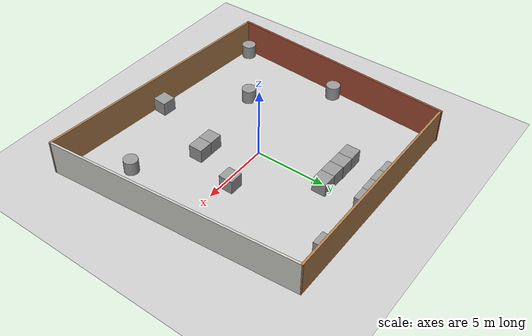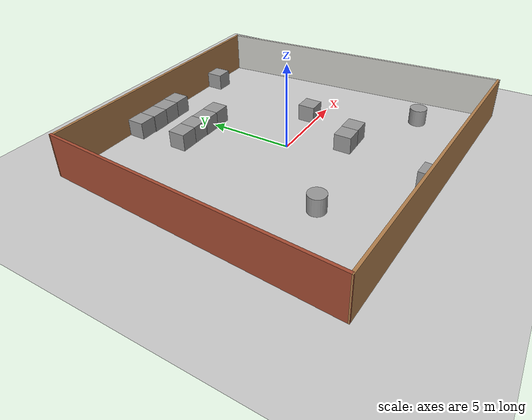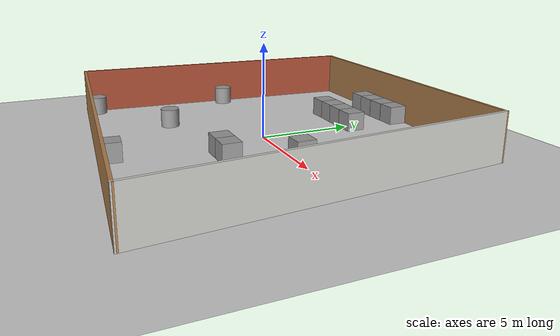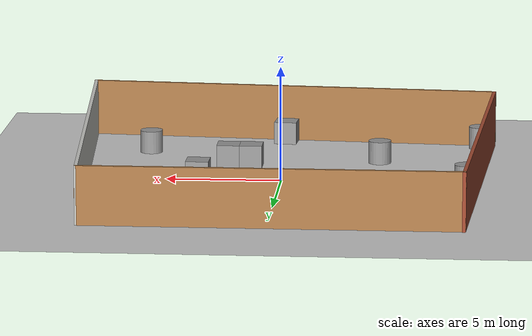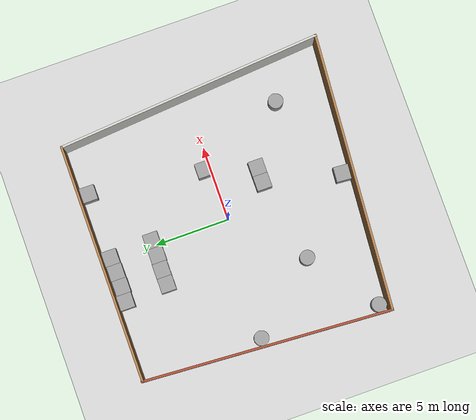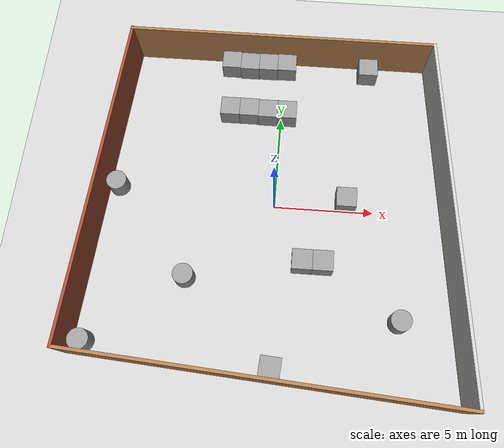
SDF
<sdf version="1.7">
 <world name="default">
  <scene><ambient>0.4 0.4 0.4 1</ambient><background>0.7 0.7 0.7 1</background><shadows>1</shadows></scene>
  <light name="sun" type="directional">
   <pose>0 0 10 0 -0 0</pose>
   <diffuse>0.8 0.8 0.8 1</diffuse>
   <specular>0.2 0.2 0.2 1</specular>
   <attenuation>
    <range>1000</range>
    <constant>0.9</constant>
    <linear>0.01</linear>
    <quadratic>0.001</quadratic>
   </attenuation>
   <direction>-0.5 0.1 -0.9</direction>
   <spot><inner_angle>0</inner_angle><outer_angle>0</outer_angle><falloff>0</falloff></spot>
  </light>
  <model name="ground_plane">
   <static>1</static>
   <link name="link">
    <collision name="collision">
     <geometry><plane><normal>0 0 1</normal><size>100 100</size></plane></geometry>
     <surface><friction><ode><mu>100</mu><mu2>50</mu2></ode></friction></surface>
    </collision>
    <visual name="visual">
     <cast_shadows>0</cast_shadows>
     <geometry><plane><normal>0 0 1</normal><size>100 100</size></plane></geometry>
     <material>
      <script><uri>file://media/materials/scripts/gazebo.material</uri><name>Gazebo/Grey</name></script>
     </material>
    </visual>
   </link>
  </model>
  <physics type="ode">
   <real_time_update_rate>1000</real_time_update_rate>
   <max_step_size>0.001</max_step_size>
   <real_time_factor>1</real_time_factor>
   <ode>
    <solver>
     <type>quick</type>
     <iters>150</iters>
     <precon_iters>0</precon_iters>
     <sor>1.4</sor>
     <use_dynamic_moi_rescaling>1</use_dynamic_moi_rescaling>
    </solver>
    <constraints>
     <cfm>1e-05</cfm>
     <erp>0.2</erp>
     <contact_max_correcting_vel>2000</contact_max_correcting_vel>
     <contact_surface_layer>0.01</contact_surface_layer>
    </constraints>
   </ode>
  </physics>
  <gravity>0 0 -9.8</gravity>
  <magnetic_field>6e-06 2.3e-05 -4.2e-05</magnetic_field>
  <atmosphere type="adiabatic"/>
  <spherical_coordinates>
   <surface_model>EARTH_WGS84</surface_model>
   <latitude_deg>0</latitude_deg>
   <longitude_deg>0</longitude_deg>
   <elevation>0</elevation>
   <heading_deg>0</heading_deg>
  </spherical_coordinates>
  <model name="Untitled">
   <pose>0.051177 -0.276921 0 0 -0 0</pose>
   <link name="Wall_0">
    <collision name="Wall_0_Collision">
     <geometry><box><size>16.6677 0.15 2.5</size></box></geometry>
     <pose>0 0 1.25 0 -0 0</pose>
    </collision>
    <visual name="Wall_0_Visual">
     <pose>0 0 1.25 0 -0 0</pose>
     <geometry><box><size>16.6677 0.15 2.5</size></box></geometry>
     <material>
      <script><uri>file://media/materials/scripts/gazebo.material</uri><name>Gazebo/Bricks</name></script>
      <ambient>1 1 1 1</ambient>
     </material>
     <meta><layer>0</layer></meta>
    </visual>
    <pose>-8.64459 0.689502 0 0 -0 -1.63163</pose>
   </link>
   <link name="Wall_2">
    <collision name="Wall_2_Collision">
     <geometry><box><size>16 0.15 2.5</size></box></geometry>
     <pose>0 0 1.25 0 -0 0</pose>
    </collision>
    <visual name="Wall_2_Visual">
     <pose>0 0 1.25 0 -0 0</pose>
     <geometry><box><size>16 0.15 2.5</size></box></geometry>
     <material>
      <script><uri>file://media/materials/scripts/gazebo.material</uri><name>Gazebo/Wood</name></script>
      <ambient>1 1 1 1</ambient>
     </material>
     <meta><layer>0</layer></meta>
    </visual>
    <pose>-0.217493 8.90247 0 0 -0 0</pose>
   </link>
   <link name="Wall_3">
    <collision name="Wall_3_Collision">
     <geometry><box><size>18.0421 0.15 2.5</size></box></geometry>
     <pose>0 0 1.25 0 -0 0</pose>
    </collision>
    <visual name="Wall_3_Visual">
     <pose>0 0 1.25 0 -0 0</pose>
     <geometry><box><size>18.0421 0.15 2.5</size></box></geometry>
     <material>
      <script><uri>file://media/materials/scripts/gazebo.material</uri><name>Gazebo/CeilingTiled</name></script>
      <ambient>1 1 1 1</ambient>
     </material>
     <meta><layer>0</layer></meta>
    </visual>
    <pose>8.42692 -0.014612 0 0 -0 -1.49029</pose>
   </link>
   <link name="Wall_4">
    <collision name="Wall_4_Collision">
     <geometry><box><size>18.4948 0.15 2.5</size></box></geometry>
     <pose>0 0 1.25 0 -0 0</pose>
    </collision>
    <visual name="Wall_4_Visual">
     <pose>0 0 1.25 0 -0 0</pose>
     <geometry><box><size>18.4948 0.15 2.5</size></box></geometry>
     <material>
      <script><uri>file://media/materials/scripts/gazebo.material</uri><name>Gazebo/Wood</name></script>
      <ambient>1 1 1 1</ambient>
     </material>
     <meta><layer>0</layer></meta>
    </visual>
    <pose>-0.000182 -8.24287 0 0 -0 3.06643</pose>
   </link>
   <static>1</static>
  </model>
  <model name="unit_box_0">
   <pose>-0.864351 8.02434 0.5 -0 -0 -0.001548</pose>
   <link name="link">
    <inertial>
     <mass>1</mass>
     <inertia>
      <ixx>0.166667</ixx>
      <ixy>0</ixy>
      <ixz>0</ixz>
      <iyy>0.166667</iyy>
      <iyz>0</iyz>
      <izz>0.166667</izz>
     </inertia>
    </inertial>
    <collision name="collision"><geometry><box><size>1 1 1</size></box></geometry></collision>
    <visual name="visual">
     <geometry><box><size>1 1 1</size></box></geometry>
     <material>
      <script><name>Gazebo/Grey</name><uri>file://media/materials/scripts/gazebo.material</uri></script>
     </material>
    </visual>
   </link>
  </model>
  <model name="unit_box">
   <pose>0.135703 8.04968 0.5 0 0 -0.001571</pose>
   <link name="link">
    <inertial>
     <mass>1</mass>
     <inertia>
      <ixx>0.166667</ixx>
      <ixy>0</ixy>
      <ixz>0</ixz>
      <iyy>0.166667</iyy>
      <iyz>0</iyz>
      <izz>0.166667</izz>
     </inertia>
    </inertial>
    <collision name="collision"><geometry><box><size>1 1 1</size></box></geometry></collision>
    <visual name="visual">
     <geometry><box><size>1 1 1</size></box></geometry>
     <material>
      <script><name>Gazebo/Grey</name><uri>file://media/materials/scripts/gazebo.material</uri></script>
     </material>
    </visual>
   </link>
  </model>
  <model name="unit_box_1">
   <pose>4.54449 8.05055 0.5 0 -0 0</pose>
   <link name="link">
    <inertial>
     <mass>1</mass>
     <inertia>
      <ixx>0.166667</ixx>
      <ixy>0</ixy>
      <ixz>0</ixz>
      <iyy>0.166667</iyy>
      <iyz>0</iyz>
      <izz>0.166667</izz>
     </inertia>
    </inertial>
    <collision name="collision"><geometry><box><size>1 1 1</size></box></geometry></collision>
    <visual name="visual">
     <geometry><box><size>1 1 1</size></box></geometry>
     <material>
      <script><name>Gazebo/Grey</name><uri>file://media/materials/scripts/gazebo.material</uri></script>
     </material>
    </visual>
   </link>
  </model>
  <model name="unit_box_2">
   <pose>0.330432 -7.96279 0.5 0 -0 -0.075269</pose>
   <link name="link">
    <inertial>
     <mass>1</mass>
     <inertia>
      <ixx>0.166667</ixx>
      <ixy>0</ixy>
      <ixz>0</ixz>
      <iyy>0.166667</iyy>
      <iyz>0</iyz>
      <izz>0.166667</izz>
     </inertia>
    </inertial>
    <collision name="collision"><geometry><box><size>1 1 1</size></box></geometry></collision>
    <visual name="visual">
     <geometry><box><size>1 1 1</size></box></geometry>
     <material>
      <script><name>Gazebo/Grey</name><uri>file://media/materials/scripts/gazebo.material</uri></script>
     </material>
    </visual>
   </link>
  </model>
  <model name="unit_cylinder">
   <pose>-8.00743 0.57536 0.499993 4e-06 4e-06 -0</pose>
   <link name="link">
    <inertial>
     <mass>1</mass>
     <inertia><ixx>0.145833</ixx><ixy>0</ixy><ixz>0</ixz><iyy>0.145833</iyy><iyz>0</iyz><izz>0.125</izz></inertia>
    </inertial>
    <collision name="collision">
     <geometry><cylinder><radius>0.5</radius><length>1</length></cylinder></geometry>
    </collision>
    <visual name="visual">
     <geometry><cylinder><radius>0.5</radius><length>1</length></cylinder></geometry>
     <material>
      <script><name>Gazebo/Grey</name><uri>file://media/materials/scripts/gazebo.material</uri></script>
     </material>
    </visual>
   </link>
  </model>
  <model name="unit_cylinder_0">
   <pose>-8.48712 -7.30019 0.499995 0 -8e-06 -0.030659</pose>
   <link name="link">
    <inertial>
     <mass>1</mass>
     <inertia><ixx>0.145833</ixx><ixy>0</ixy><ixz>0</ixz><iyy>0.145833</iyy><iyz>0</iyz><izz>0.125</izz></inertia>
    </inertial>
    <collision name="collision">
     <geometry><cylinder><radius>0.5</radius><length>1</length></cylinder></geometry>
    </collision>
    <visual name="visual">
     <geometry><cylinder><radius>0.5</radius><length>1</length></cylinder></geometry>
     <material>
      <script><name>Gazebo/Grey</name><uri>file://media/materials/scripts/gazebo.material</uri></script>
     </material>
    </visual>
   </link>
  </model>
  <model name="unit_cylinder_1">
   <pose>-4.09553 -3.95965 0.499993 4e-06 4e-06 -0</pose>
   <link name="link">
    <inertial>
     <mass>1</mass>
     <inertia><ixx>0.145833</ixx><ixy>0</ixy><ixz>0</ixz><iyy>0.145833</iyy><iyz>0</iyz><izz>0.125</izz></inertia>
    </inertial>
    <collision name="collision">
     <geometry><cylinder><radius>0.5</radius><length>1</length></cylinder></geometry>
    </collision>
    <visual name="visual">
     <geometry><cylinder><radius>0.5</radius><length>1</length></cylinder></geometry>
     <material>
      <script><name>Gazebo/Grey</name><uri>file://media/materials/scripts/gazebo.material</uri></script>
     </material>
    </visual>
   </link>
  </model>
  <model name="unit_box_3">
   <pose>1.52534 -2.87393 0.5 0 0 -0.001059</pose>
   <link name="link">
    <inertial>
     <mass>1</mass>
     <inertia>
      <ixx>0.166667</ixx>
      <ixy>0</ixy>
      <ixz>0</ixz>
      <iyy>0.166667</iyy>
      <iyz>0</iyz>
      <izz>0.166667</izz>
     </inertia>
    </inertial>
    <collision name="collision"><geometry><box><size>1 1 1</size></box></geometry></collision>
    <visual name="visual">
     <geometry><box><size>1 1 1</size></box></geometry>
     <material>
      <script><name>Gazebo/Grey</name><uri>file://media/materials/scripts/gazebo.material</uri></script>
     </material>
    </visual>
   </link>
  </model>
  <model name="unit_box_4">
   <pose>2.52534 -2.8724 0.5 -0 -0 -0.001064</pose>
   <link name="link">
    <inertial>
     <mass>1</mass>
     <inertia>
      <ixx>0.166667</ixx>
      <ixy>0</ixy>
      <ixz>0</ixz>
      <iyy>0.166667</iyy>
      <iyz>0</iyz>
      <izz>0.166667</izz>
     </inertia>
    </inertial>
    <collision name="collision"><geometry><box><size>1 1 1</size></box></geometry></collision>
    <visual name="visual">
     <geometry><box><size>1 1 1</size></box></geometry>
     <material>
      <script><name>Gazebo/Grey</name><uri>file://media/materials/scripts/gazebo.material</uri></script>
     </material>
    </visual>
   </link>
  </model>
  <model name="unit_box_5">
   <pose>3.56601 0.452425 0.5 0 -0 0</pose>
   <link name="link">
    <inertial>
     <mass>1</mass>
     <inertia>
      <ixx>0.166667</ixx>
      <ixy>0</ixy>
      <ixz>0</ixz>
      <iyy>0.166667</iyy>
      <iyz>0</iyz>
      <izz>0.166667</izz>
     </inertia>
    </inertial>
    <collision name="collision"><geometry><box><size>1 1 1</size></box></geometry></collision>
    <visual name="visual">
     <geometry><box><size>1 1 1</size></box></geometry>
     <material>
      <script><name>Gazebo/Grey</name><uri>file://media/materials/scripts/gazebo.material</uri></script>
     </material>
    </visual>
   </link>
  </model>
  <model name="unit_cylinder_2">
   <pose>6.24347 -5.46609 0.499997 -4e-06 -4e-06 -0</pose>
   <link name="link">
    <inertial>
     <mass>1</mass>
     <inertia><ixx>0.145833</ixx><ixy>0</ixy><ixz>0</ixz><iyy>0.145833</iyy><iyz>0</iyz><izz>0.125</izz></inertia>
    </inertial>
    <collision name="collision">
     <geometry><cylinder><radius>0.5</radius><length>1</length></cylinder></geometry>
    </collision>
    <visual name="visual">
     <geometry><cylinder><radius>0.5</radius><length>1</length></cylinder></geometry>
     <material>
      <script><name>Gazebo/Grey</name><uri>file://media/materials/scripts/gazebo.material</uri></script>
     </material>
    </visual>
   </link>
  </model>
  <model name="unit_box_6">
   <pose>0.309493 5.16531 0.5 0 0 -0.000232</pose>
   <link name="link">
    <inertial>
     <mass>1</mass>
     <inertia>
      <ixx>0.166667</ixx>
      <ixy>0</ixy>
      <ixz>0</ixz>
      <iyy>0.166667</iyy>
      <iyz>0</iyz>
      <izz>0.166667</izz>
     </inertia>
    </inertial>
    <collision name="collision"><geometry><box><size>1 1 1</size></box></geometry></collision>
    <visual name="visual">
     <geometry><box><size>1 1 1</size></box></geometry>
     <material>
      <script><name>Gazebo/Grey</name><uri>file://media/materials/scripts/gazebo.material</uri></script>
     </material>
    </visual>
   </link>
  </model>
  <model name="unit_box_7">
   <pose>-0.690513 5.15699 0.5 -0 -0 -0.00023</pose>
   <link name="link">
    <inertial>
     <mass>1</mass>
     <inertia>
      <ixx>0.166667</ixx>
      <ixy>0</ixy>
      <ixz>0</ixz>
      <iyy>0.166667</iyy>
      <iyz>0</iyz>
      <izz>0.166667</izz>
     </inertia>
    </inertial>
    <collision name="collision"><geometry><box><size>1 1 1</size></box></geometry></collision>
    <visual name="visual">
     <geometry><box><size>1 1 1</size></box></geometry>
     <material>
      <script><name>Gazebo/Grey</name><uri>file://media/materials/scripts/gazebo.material</uri></script>
     </material>
    </visual>
   </link>
  </model>
  <model name="unit_box_8">
   <pose>-1.86439 8.00873 0.5 0 0 -0.001565</pose>
   <link name="link">
    <inertial>
     <mass>1</mass>
     <inertia>
      <ixx>0.166667</ixx>
      <ixy>0</ixy>
      <ixz>0</ixz>
      <iyy>0.166667</iyy>
      <iyz>0</iyz>
      <izz>0.166667</izz>
     </inertia>
    </inertial>
    <collision name="collision"><geometry><box><size>1 1 1</size></box></geometry></collision>
    <visual name="visual">
     <geometry><box><size>1 1 1</size></box></geometry>
     <material>
      <script><name>Gazebo/Grey</name><uri>file://media/materials/scripts/gazebo.material</uri></script>
     </material>
    </visual>
   </link>
  </model>
  <model name="unit_box_9">
   <pose>-1.69053 5.18664 0.5 0 -0 -0.000257</pose>
   <link name="link">
    <inertial>
     <mass>1</mass>
     <inertia>
      <ixx>0.166667</ixx>
      <ixy>0</ixy>
      <ixz>0</ixz>
      <iyy>0.166667</iyy>
      <iyz>0</iyz>
      <izz>0.166667</izz>
     </inertia>
    </inertial>
    <collision name="collision"><geometry><box><size>1 1 1</size></box></geometry></collision>
    <visual name="visual">
     <geometry><box><size>1 1 1</size></box></geometry>
     <material>
      <script><name>Gazebo/Grey</name><uri>file://media/materials/scripts/gazebo.material</uri></script>
     </material>
    </visual>
   </link>
  </model>
  <model name="unit_box_10">
   <pose>-2.6907 5.18516 0.5 -0 -0 -0.000215</pose>
   <link name="link">
    <inertial>
     <mass>1</mass>
     <inertia>
      <ixx>0.166667</ixx>
      <ixy>0</ixy>
      <ixz>0</ixz>
      <iyy>0.166667</iyy>
      <iyz>0</iyz>
      <izz>0.166667</izz>
     </inertia>
    </inertial>
    <collision name="collision"><geometry><box><size>1 1 1</size></box></geometry></collision>
    <visual name="visual">
     <geometry><box><size>1 1 1</size></box></geometry>
     <material>
      <script><name>Gazebo/Grey</name><uri>file://media/materials/scripts/gazebo.material</uri></script>
     </material>
    </visual>
   </link>
  </model>
  <model name="unit_box_11">
   <pose>-2.86481 8.04949 0.5 0 0 -0.000693</pose>
   <link name="link">
    <inertial>
     <mass>1</mass>
     <inertia>
      <ixx>0.166667</ixx>
      <ixy>0</ixy>
      <ixz>0</ixz>
      <iyy>0.166667</iyy>
      <iyz>0</iyz>
      <izz>0.166667</izz>
     </inertia>
    </inertial>
    <collision name="collision"><geometry><box><size>1 1 1</size></box></geometry></collision>
    <visual name="visual">
     <geometry><box><size>1 1 1</size></box></geometry>
     <material>
      <script><name>Gazebo/Grey</name><uri>file://media/materials/scripts/gazebo.material</uri></script>
     </material>
    </visual>
   </link>
  </model>
 </world>
</sdf>
